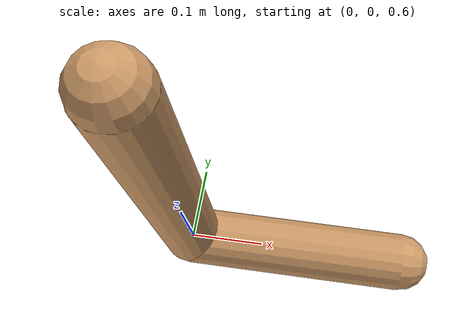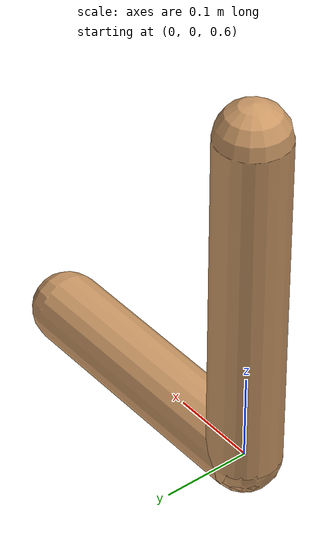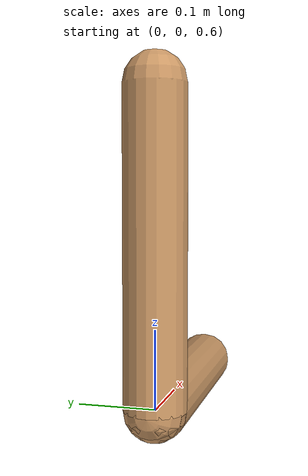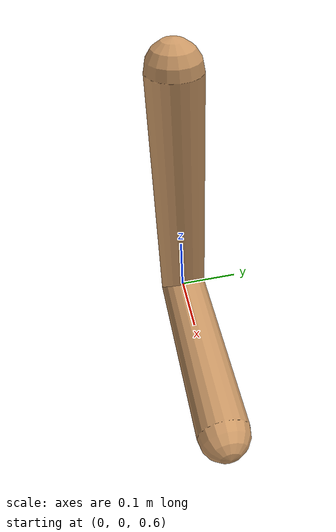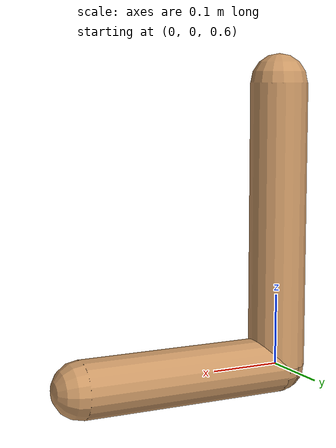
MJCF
<mujoco model="doublePendulum">
    <compiler inertiafromgeom="true" coordinate="global"/>
    <default>
        <geom rgba=".8 .6 .4 1"/>
    </default>
    <asset>
        <texture type="skybox" builtin="gradient" rgb1="1 1 1" rgb2=".6 .8 1" width="256" height="256"/>
    </asset>
    <worldbody>
        <light pos="0 1 1" dir="0 -1 -1" diffuse="1 1 1"/>
        <body>
            <geom type="capsule" fromto="0 0 1 0 0 0.6" size="0.04"/>
            <joint name="joint1" type="hinge" pos="0 0 1" axis="0 1 0"/>
            <body>
                <geom type="capsule" fromto="0 0 0.6 0.3 0 0.6" size="0.04"/>
                <joint name="joint2" type="hinge" pos="0 0 0.6" axis="0 1 0"/>
            </body>
        </body>
    </worldbody>
    <actuator>
<!--  ================= Torque actuators ================= -->

    <motor name="Joint2" gear="200" joint="joint2" ctrlrange="-0.005 0.005"/>

 <!--  ================= Position actuators ================= -->
</actuator>
</mujoco>
